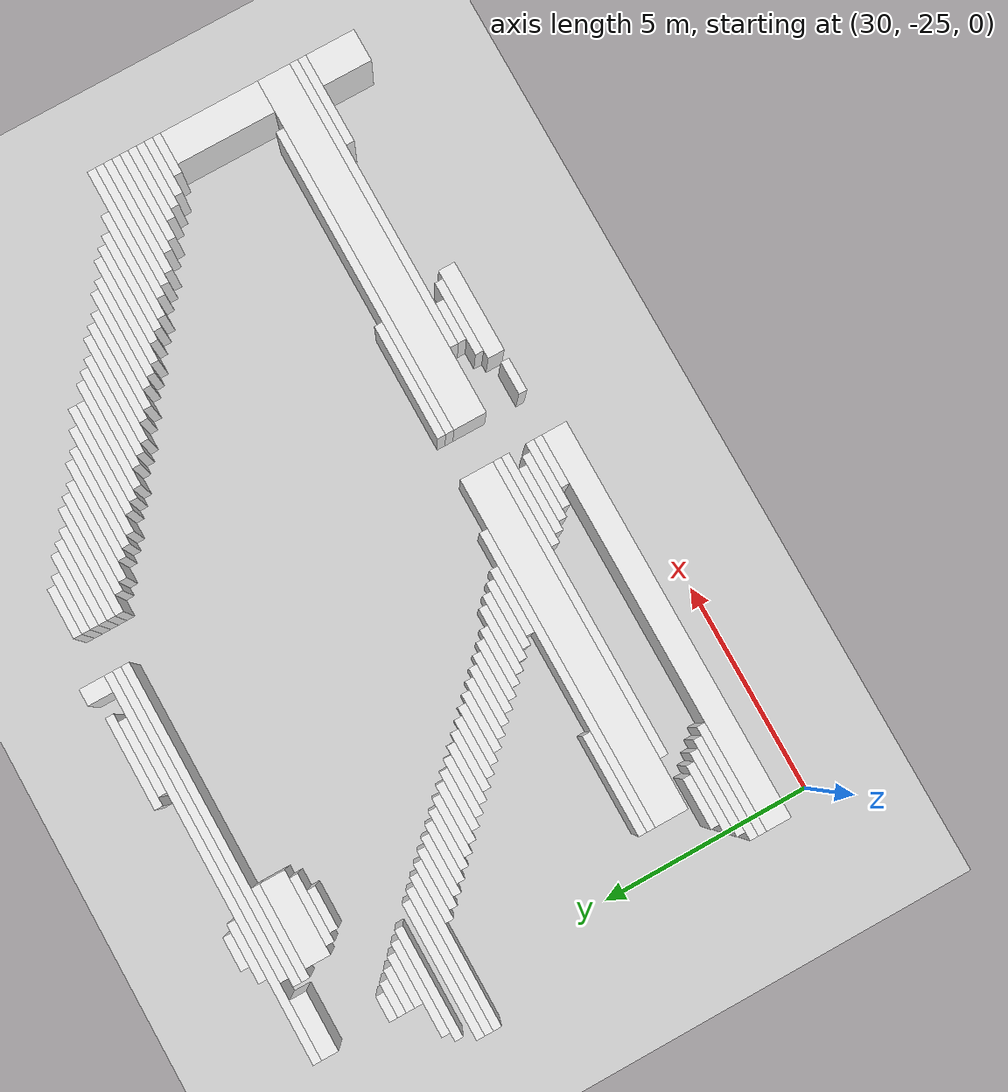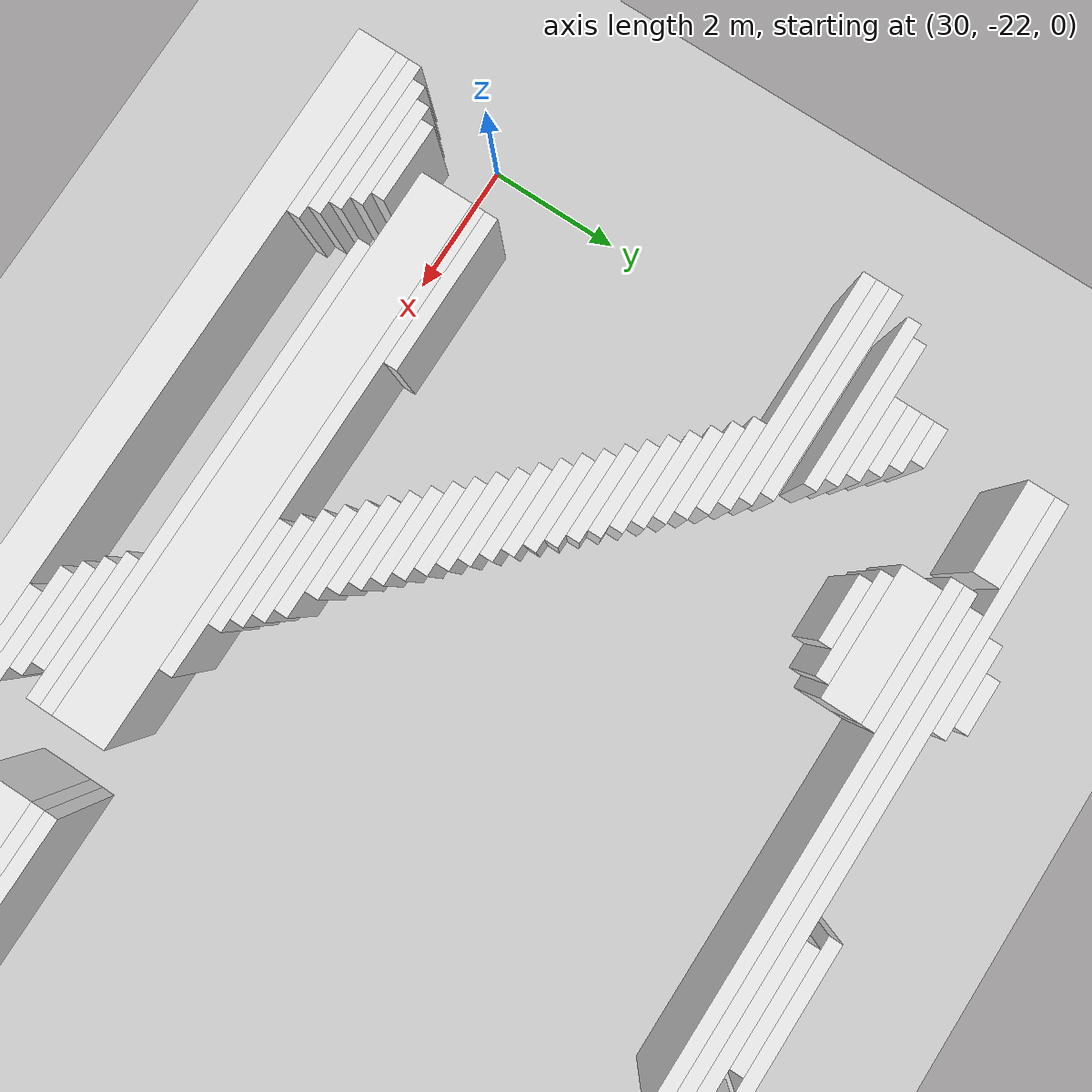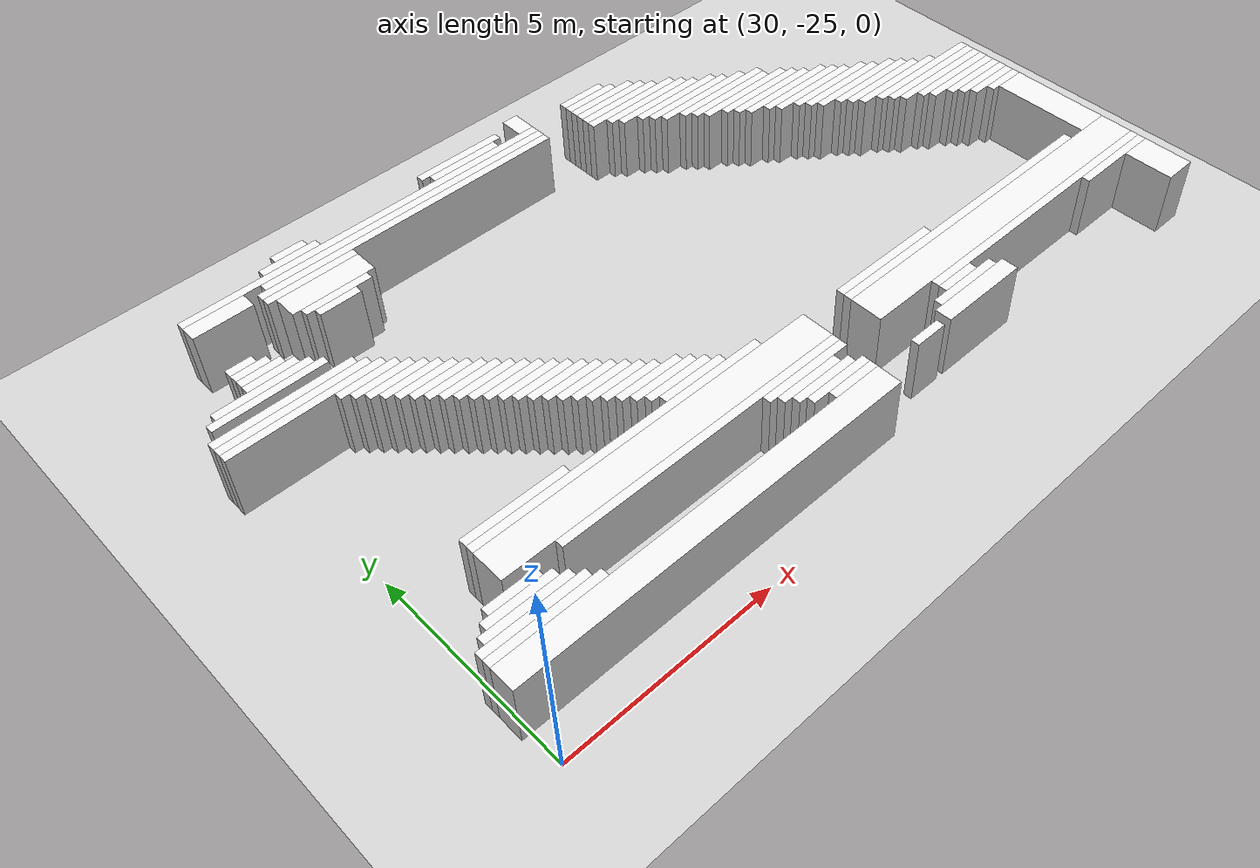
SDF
<sdf version="1.7">
 <world name="default">
  <model name="ground_plane">
   <static>1</static>
   <link name="link">
    <collision name="collision">
     <geometry><plane><normal>0 0 1</normal><size>120 120</size></plane></geometry>
    </collision>
    <visual name="visual">
     <geometry><plane><normal>0 0 1</normal><size>120 120</size></plane></geometry>
     <material>
      <script><uri>file://media/materials/scripts/gazebo.material</uri><name>Gazebo/Grey</name></script>
     </material>
    </visual>
   </link>
  </model>
  <model name="random_complex_02_model">
   <static>1</static>
   <link name="obs_2456">
    <pose>33.0000 -12.7000 0.8000 0 0 0</pose>
    <collision name="obs_2456_col"><geometry><box><size>0.8000 0.2000 1.6000</size></box></geometry></collision>
    <visual name="obs_2456_vis">
     <geometry><box><size>0.8000 0.2000 1.6000</size></box></geometry>
     <material>
      <script><uri>file://media/materials/scripts/gazebo.material</uri><name>Gazebo/White</name></script>
     </material>
    </visual>
   </link>
   <link name="obs_2457">
    <pose>37.5000 -12.7000 0.8000 0 0 0</pose>
    <collision name="obs_2457_col"><geometry><box><size>2.2000 0.2000 1.6000</size></box></geometry></collision>
    <visual name="obs_2457_vis">
     <geometry><box><size>2.2000 0.2000 1.6000</size></box></geometry>
     <material>
      <script><uri>file://media/materials/scripts/gazebo.material</uri><name>Gazebo/White</name></script>
     </material>
    </visual>
   </link>
   <link name="obs_2462">
    <pose>39.2000 -12.7000 0.8000 0 0 0</pose>
    <collision name="obs_2462_col"><geometry><box><size>0.4000 0.6000 1.6000</size></box></geometry></collision>
    <visual name="obs_2462_vis">
     <geometry><box><size>0.4000 0.6000 1.6000</size></box></geometry>
     <material>
      <script><uri>file://media/materials/scripts/gazebo.material</uri><name>Gazebo/White</name></script>
     </material>
    </visual>
   </link>
   <link name="obs_2464">
    <pose>32.9000 -12.9000 0.8000 0 0 0</pose>
    <collision name="obs_2464_col"><geometry><box><size>1.4000 0.2000 1.6000</size></box></geometry></collision>
    <visual name="obs_2464_vis">
     <geometry><box><size>1.4000 0.2000 1.6000</size></box></geometry>
     <material>
      <script><uri>file://media/materials/scripts/gazebo.material</uri><name>Gazebo/White</name></script>
     </material>
    </visual>
   </link>
   <link name="obs_2465">
    <pose>37.5000 -12.9000 0.8000 0 0 0</pose>
    <collision name="obs_2465_col"><geometry><box><size>1.8000 0.2000 1.6000</size></box></geometry></collision>
    <visual name="obs_2465_vis">
     <geometry><box><size>1.8000 0.2000 1.6000</size></box></geometry>
     <material>
      <script><uri>file://media/materials/scripts/gazebo.material</uri><name>Gazebo/White</name></script>
     </material>
    </visual>
   </link>
   <link name="obs_2466">
    <pose>41.0000 -12.9000 0.8000 0 0 0</pose>
    <collision name="obs_2466_col"><geometry><box><size>1.2000 0.2000 1.6000</size></box></geometry></collision>
    <visual name="obs_2466_vis">
     <geometry><box><size>1.2000 0.2000 1.6000</size></box></geometry>
     <material>
      <script><uri>file://media/materials/scripts/gazebo.material</uri><name>Gazebo/White</name></script>
     </material>
    </visual>
   </link>
   <link name="obs_2469">
    <pose>34.8000 -13.1000 0.8000 0 0 0</pose>
    <collision name="obs_2469_col"><geometry><box><size>9.2000 0.2000 1.6000</size></box></geometry></collision>
    <visual name="obs_2469_vis">
     <geometry><box><size>9.2000 0.2000 1.6000</size></box></geometry>
     <material>
      <script><uri>file://media/materials/scripts/gazebo.material</uri><name>Gazebo/White</name></script>
     </material>
    </visual>
   </link>
   <link name="obs_2470">
    <pose>41.1000 -13.1000 0.8000 0 0 0</pose>
    <collision name="obs_2470_col"><geometry><box><size>1.4000 0.2000 1.6000</size></box></geometry></collision>
    <visual name="obs_2470_vis">
     <geometry><box><size>1.4000 0.2000 1.6000</size></box></geometry>
     <material>
      <script><uri>file://media/materials/scripts/gazebo.material</uri><name>Gazebo/White</name></script>
     </material>
    </visual>
   </link>
   <link name="obs_2475">
    <pose>35.7000 -13.3000 0.8000 0 0 0</pose>
    <collision name="obs_2475_col"><geometry><box><size>7.4000 0.2000 1.6000</size></box></geometry></collision>
    <visual name="obs_2475_vis">
     <geometry><box><size>7.4000 0.2000 1.6000</size></box></geometry>
     <material>
      <script><uri>file://media/materials/scripts/gazebo.material</uri><name>Gazebo/White</name></script>
     </material>
    </visual>
   </link>
   <link name="obs_2476">
    <pose>41.3000 -13.3000 0.8000 0 0 0</pose>
    <collision name="obs_2476_col"><geometry><box><size>1.8000 0.2000 1.6000</size></box></geometry></collision>
    <visual name="obs_2476_vis">
     <geometry><box><size>1.8000 0.2000 1.6000</size></box></geometry>
     <material>
      <script><uri>file://media/materials/scripts/gazebo.material</uri><name>Gazebo/White</name></script>
     </material>
    </visual>
   </link>
   <link name="obs_2479">
    <pose>30.9000 -13.4000 0.8000 0 0 0</pose>
    <collision name="obs_2479_col"><geometry><box><size>1.4000 0.4000 1.6000</size></box></geometry></collision>
    <visual name="obs_2479_vis">
     <geometry><box><size>1.4000 0.4000 1.6000</size></box></geometry>
     <material>
      <script><uri>file://media/materials/scripts/gazebo.material</uri><name>Gazebo/White</name></script>
     </material>
    </visual>
   </link>
   <link name="obs_2483">
    <pose>35.6000 -13.5000 0.8000 0 0 0</pose>
    <collision name="obs_2483_col"><geometry><box><size>7.6000 0.2000 1.6000</size></box></geometry></collision>
    <visual name="obs_2483_vis">
     <geometry><box><size>7.6000 0.2000 1.6000</size></box></geometry>
     <material>
      <script><uri>file://media/materials/scripts/gazebo.material</uri><name>Gazebo/White</name></script>
     </material>
    </visual>
   </link>
   <link name="obs_2484">
    <pose>41.4000 -13.5000 0.8000 0 0 0</pose>
    <collision name="obs_2484_col"><geometry><box><size>2.0000 0.2000 1.6000</size></box></geometry></collision>
    <visual name="obs_2484_vis">
     <geometry><box><size>2.0000 0.2000 1.6000</size></box></geometry>
     <material>
      <script><uri>file://media/materials/scripts/gazebo.material</uri><name>Gazebo/White</name></script>
     </material>
    </visual>
   </link>
   <link name="obs_2490">
    <pose>32.9000 -13.7000 0.8000 0 0 0</pose>
    <collision name="obs_2490_col"><geometry><box><size>2.2000 0.2000 1.6000</size></box></geometry></collision>
    <visual name="obs_2490_vis">
     <geometry><box><size>2.2000 0.2000 1.6000</size></box></geometry>
     <material>
      <script><uri>file://media/materials/scripts/gazebo.material</uri><name>Gazebo/White</name></script>
     </material>
    </visual>
   </link>
   <link name="obs_2491">
    <pose>41.5000 -13.7000 0.8000 0 0 0</pose>
    <collision name="obs_2491_col"><geometry><box><size>2.2000 0.2000 1.6000</size></box></geometry></collision>
    <visual name="obs_2491_vis">
     <geometry><box><size>2.2000 0.2000 1.6000</size></box></geometry>
     <material>
      <script><uri>file://media/materials/scripts/gazebo.material</uri><name>Gazebo/White</name></script>
     </material>
    </visual>
   </link>
   <link name="obs_2500">
    <pose>41.7000 -13.9000 0.8000 0 0 0</pose>
    <collision name="obs_2500_col"><geometry><box><size>2.6000 0.2000 1.6000</size></box></geometry></collision>
    <visual name="obs_2500_vis">
     <geometry><box><size>2.6000 0.2000 1.6000</size></box></geometry>
     <material>
      <script><uri>file://media/materials/scripts/gazebo.material</uri><name>Gazebo/White</name></script>
     </material>
    </visual>
   </link>
   <link name="obs_2508">
    <pose>42.0000 -14.1000 0.8000 0 0 0</pose>
    <collision name="obs_2508_col"><geometry><box><size>2.4000 0.2000 1.6000</size></box></geometry></collision>
    <visual name="obs_2508_vis">
     <geometry><box><size>2.4000 0.2000 1.6000</size></box></geometry>
     <material>
      <script><uri>file://media/materials/scripts/gazebo.material</uri><name>Gazebo/White</name></script>
     </material>
    </visual>
   </link>
   <link name="obs_2510">
    <pose>33.0000 -14.1000 0.8000 0 0 0</pose>
    <collision name="obs_2510_col"><geometry><box><size>2.0000 0.6000 1.6000</size></box></geometry></collision>
    <visual name="obs_2510_vis">
     <geometry><box><size>2.0000 0.6000 1.6000</size></box></geometry>
     <material>
      <script><uri>file://media/materials/scripts/gazebo.material</uri><name>Gazebo/White</name></script>
     </material>
    </visual>
   </link>
   <link name="obs_2519">
    <pose>42.2000 -14.3000 0.8000 0 0 0</pose>
    <collision name="obs_2519_col"><geometry><box><size>2.4000 0.2000 1.6000</size></box></geometry></collision>
    <visual name="obs_2519_vis">
     <geometry><box><size>2.4000 0.2000 1.6000</size></box></geometry>
     <material>
      <script><uri>file://media/materials/scripts/gazebo.material</uri><name>Gazebo/White</name></script>
     </material>
    </visual>
   </link>
   <link name="obs_2529">
    <pose>33.0000 -14.5000 0.8000 0 0 0</pose>
    <collision name="obs_2529_col"><geometry><box><size>1.6000 0.2000 1.6000</size></box></geometry></collision>
    <visual name="obs_2529_vis">
     <geometry><box><size>1.6000 0.2000 1.6000</size></box></geometry>
     <material>
      <script><uri>file://media/materials/scripts/gazebo.material</uri><name>Gazebo/White</name></script>
     </material>
    </visual>
   </link>
   <link name="obs_2530">
    <pose>42.6000 -14.5000 0.8000 0 0 0</pose>
    <collision name="obs_2530_col"><geometry><box><size>2.4000 0.2000 1.6000</size></box></geometry></collision>
    <visual name="obs_2530_vis">
     <geometry><box><size>2.4000 0.2000 1.6000</size></box></geometry>
     <material>
      <script><uri>file://media/materials/scripts/gazebo.material</uri><name>Gazebo/White</name></script>
     </material>
    </visual>
   </link>
   <link name="obs_2538">
    <pose>32.9000 -14.7000 0.8000 0 0 0</pose>
    <collision name="obs_2538_col"><geometry><box><size>1.0000 0.2000 1.6000</size></box></geometry></collision>
    <visual name="obs_2538_vis">
     <geometry><box><size>1.0000 0.2000 1.6000</size></box></geometry>
     <material>
      <script><uri>file://media/materials/scripts/gazebo.material</uri><name>Gazebo/White</name></script>
     </material>
    </visual>
   </link>
   <link name="obs_2539">
    <pose>42.8000 -14.7000 0.8000 0 0 0</pose>
    <collision name="obs_2539_col"><geometry><box><size>2.4000 0.2000 1.6000</size></box></geometry></collision>
    <visual name="obs_2539_vis">
     <geometry><box><size>2.4000 0.2000 1.6000</size></box></geometry>
     <material>
      <script><uri>file://media/materials/scripts/gazebo.material</uri><name>Gazebo/White</name></script>
     </material>
    </visual>
   </link>
   <link name="obs_2548">
    <pose>30.5000 -14.9000 0.8000 0 0 0</pose>
    <collision name="obs_2548_col"><geometry><box><size>0.6000 0.2000 1.6000</size></box></geometry></collision>
    <visual name="obs_2548_vis">
     <geometry><box><size>0.6000 0.2000 1.6000</size></box></geometry>
     <material>
      <script><uri>file://media/materials/scripts/gazebo.material</uri><name>Gazebo/White</name></script>
     </material>
    </visual>
   </link>
   <link name="obs_2549">
    <pose>43.1000 -14.9000 0.8000 0 0 0</pose>
    <collision name="obs_2549_col"><geometry><box><size>2.6000 0.2000 1.6000</size></box></geometry></collision>
    <visual name="obs_2549_vis">
     <geometry><box><size>2.6000 0.2000 1.6000</size></box></geometry>
     <material>
      <script><uri>file://media/materials/scripts/gazebo.material</uri><name>Gazebo/White</name></script>
     </material>
    </visual>
   </link>
   <link name="obs_2558">
    <pose>30.6000 -15.1000 0.8000 0 0 0</pose>
    <collision name="obs_2558_col"><geometry><box><size>0.8000 0.2000 1.6000</size></box></geometry></collision>
    <visual name="obs_2558_vis">
     <geometry><box><size>0.8000 0.2000 1.6000</size></box></geometry>
     <material>
      <script><uri>file://media/materials/scripts/gazebo.material</uri><name>Gazebo/White</name></script>
     </material>
    </visual>
   </link>
   <link name="obs_2559">
    <pose>43.5000 -15.1000 0.8000 0 0 0</pose>
    <collision name="obs_2559_col"><geometry><box><size>2.6000 0.2000 1.6000</size></box></geometry></collision>
    <visual name="obs_2559_vis">
     <geometry><box><size>2.6000 0.2000 1.6000</size></box></geometry>
     <material>
      <script><uri>file://media/materials/scripts/gazebo.material</uri><name>Gazebo/White</name></script>
     </material>
    </visual>
   </link>
   <link name="obs_2568">
    <pose>30.7000 -15.3000 0.8000 0 0 0</pose>
    <collision name="obs_2568_col"><geometry><box><size>1.0000 0.2000 1.6000</size></box></geometry></collision>
    <visual name="obs_2568_vis">
     <geometry><box><size>1.0000 0.2000 1.6000</size></box></geometry>
     <material>
      <script><uri>file://media/materials/scripts/gazebo.material</uri><name>Gazebo/White</name></script>
     </material>
    </visual>
   </link>
   <link name="obs_2569">
    <pose>43.6000 -15.3000 0.8000 0 0 0</pose>
    <collision name="obs_2569_col"><geometry><box><size>2.4000 0.2000 1.6000</size></box></geometry></collision>
    <visual name="obs_2569_vis">
     <geometry><box><size>2.4000 0.2000 1.6000</size></box></geometry>
     <material>
      <script><uri>file://media/materials/scripts/gazebo.material</uri><name>Gazebo/White</name></script>
     </material>
    </visual>
   </link>
   <link name="obs_2580">
    <pose>30.8000 -15.5000 0.8000 0 0 0</pose>
    <collision name="obs_2580_col"><geometry><box><size>1.2000 0.2000 1.6000</size></box></geometry></collision>
    <visual name="obs_2580_vis">
     <geometry><box><size>1.2000 0.2000 1.6000</size></box></geometry>
     <material>
      <script><uri>file://media/materials/scripts/gazebo.material</uri><name>Gazebo/White</name></script>
     </material>
    </visual>
   </link>
   <link name="obs_2581">
    <pose>43.9000 -15.5000 0.8000 0 0 0</pose>
    <collision name="obs_2581_col"><geometry><box><size>2.6000 0.2000 1.6000</size></box></geometry></collision>
    <visual name="obs_2581_vis">
     <geometry><box><size>2.6000 0.2000 1.6000</size></box></geometry>
     <material>
      <script><uri>file://media/materials/scripts/gazebo.material</uri><name>Gazebo/White</name></script>
     </material>
    </visual>
   </link>
   <link name="obs_2592">
    <pose>30.5000 -15.7000 0.8000 0 0 0</pose>
    <collision name="obs_2592_col"><geometry><box><size>2.2000 0.2000 1.6000</size></box></geometry></collision>
    <visual name="obs_2592_vis">
     <geometry><box><size>2.2000 0.2000 1.6000</size></box></geometry>
     <material>
      <script><uri>file://media/materials/scripts/gazebo.material</uri><name>Gazebo/White</name></script>
     </material>
    </visual>
   </link>
   <link name="obs_2593">
    <pose>44.2000 -15.7000 0.8000 0 0 0</pose>
    <collision name="obs_2593_col"><geometry><box><size>2.4000 0.2000 1.6000</size></box></geometry></collision>
    <visual name="obs_2593_vis">
     <geometry><box><size>2.4000 0.2000 1.6000</size></box></geometry>
     <material>
      <script><uri>file://media/materials/scripts/gazebo.material</uri><name>Gazebo/White</name></script>
     </material>
    </visual>
   </link>
   <link name="obs_2605">
    <pose>30.5000 -15.9000 0.8000 0 0 0</pose>
    <collision name="obs_2605_col"><geometry><box><size>2.6000 0.2000 1.6000</size></box></geometry></collision>
    <visual name="obs_2605_vis">
     <geometry><box><size>2.6000 0.2000 1.6000</size></box></geometry>
     <material>
      <script><uri>file://media/materials/scripts/gazebo.material</uri><name>Gazebo/White</name></script>
     </material>
    </visual>
   </link>
   <link name="obs_2606">
    <pose>44.4000 -15.9000 0.8000 0 0 0</pose>
    <collision name="obs_2606_col"><geometry><box><size>2.4000 0.2000 1.6000</size></box></geometry></collision>
    <visual name="obs_2606_vis">
     <geometry><box><size>2.4000 0.2000 1.6000</size></box></geometry>
     <material>
      <script><uri>file://media/materials/scripts/gazebo.material</uri><name>Gazebo/White</name></script>
     </material>
    </visual>
   </link>
   <link name="obs_2613">
    <pose>44.7000 -16.1000 0.8000 0 0 0</pose>
    <collision name="obs_2613_col"><geometry><box><size>2.6000 0.2000 1.6000</size></box></geometry></collision>
    <visual name="obs_2613_vis">
     <geometry><box><size>2.6000 0.2000 1.6000</size></box></geometry>
     <material>
      <script><uri>file://media/materials/scripts/gazebo.material</uri><name>Gazebo/White</name></script>
     </material>
    </visual>
   </link>
   <link name="obs_2618">
    <pose>30.6000 -16.3000 0.8000 0 0 0</pose>
    <collision name="obs_2618_col"><geometry><box><size>3.2000 0.2000 1.6000</size></box></geometry></collision>
    <visual name="obs_2618_vis">
     <geometry><box><size>3.2000 0.2000 1.6000</size></box></geometry>
     <material>
      <script><uri>file://media/materials/scripts/gazebo.material</uri><name>Gazebo/White</name></script>
     </material>
    </visual>
   </link>
   <link name="obs_2619">
    <pose>45.0000 -16.3000 0.8000 0 0 0</pose>
    <collision name="obs_2619_col"><geometry><box><size>2.4000 0.2000 1.6000</size></box></geometry></collision>
    <visual name="obs_2619_vis">
     <geometry><box><size>2.4000 0.2000 1.6000</size></box></geometry>
     <material>
      <script><uri>file://media/materials/scripts/gazebo.material</uri><name>Gazebo/White</name></script>
     </material>
    </visual>
   </link>
   <link name="obs_2625">
    <pose>30.7000 -16.5000 0.8000 0 0 0</pose>
    <collision name="obs_2625_col"><geometry><box><size>3.4000 0.2000 1.6000</size></box></geometry></collision>
    <visual name="obs_2625_vis">
     <geometry><box><size>3.4000 0.2000 1.6000</size></box></geometry>
     <material>
      <script><uri>file://media/materials/scripts/gazebo.material</uri><name>Gazebo/White</name></script>
     </material>
    </visual>
   </link>
   <link name="obs_2626">
    <pose>45.2000 -16.5000 0.8000 0 0 0</pose>
    <collision name="obs_2626_col"><geometry><box><size>2.4000 0.2000 1.6000</size></box></geometry></collision>
    <visual name="obs_2626_vis">
     <geometry><box><size>2.4000 0.2000 1.6000</size></box></geometry>
     <material>
      <script><uri>file://media/materials/scripts/gazebo.material</uri><name>Gazebo/White</name></script>
     </material>
    </visual>
   </link>
   <link name="obs_2633">
    <pose>30.8000 -16.7000 0.8000 0 0 0</pose>
    <collision name="obs_2633_col"><geometry><box><size>3.6000 0.2000 1.6000</size></box></geometry></collision>
    <visual name="obs_2633_vis">
     <geometry><box><size>3.6000 0.2000 1.6000</size></box></geometry>
     <material>
      <script><uri>file://media/materials/scripts/gazebo.material</uri><name>Gazebo/White</name></script>
     </material>
    </visual>
   </link>
   <link name="obs_2634">
    <pose>45.6000 -16.7000 0.8000 0 0 0</pose>
    <collision name="obs_2634_col"><geometry><box><size>2.4000 0.2000 1.6000</size></box></geometry></collision>
    <visual name="obs_2634_vis">
     <geometry><box><size>2.4000 0.2000 1.6000</size></box></geometry>
     <material>
      <script><uri>file://media/materials/scripts/gazebo.material</uri><name>Gazebo/White</name></script>
     </material>
    </visual>
   </link>
   <link name="obs_2639">
    <pose>32.1000 -16.9000 0.8000 0 0 0</pose>
    <collision name="obs_2639_col"><geometry><box><size>1.4000 0.2000 1.6000</size></box></geometry></collision>
    <visual name="obs_2639_vis">
     <geometry><box><size>1.4000 0.2000 1.6000</size></box></geometry>
     <material>
      <script><uri>file://media/materials/scripts/gazebo.material</uri><name>Gazebo/White</name></script>
     </material>
    </visual>
   </link>
   <link name="obs_2640">
    <pose>45.8000 -16.9000 0.8000 0 0 0</pose>
    <collision name="obs_2640_col"><geometry><box><size>2.4000 0.2000 1.6000</size></box></geometry></collision>
    <visual name="obs_2640_vis">
     <geometry><box><size>2.4000 0.2000 1.6000</size></box></geometry>
     <material>
      <script><uri>file://media/materials/scripts/gazebo.material</uri><name>Gazebo/White</name></script>
     </material>
    </visual>
   </link>
   <link name="obs_2646">
    <pose>32.3000 -17.1000 0.8000 0 0 0</pose>
    <collision name="obs_2646_col"><geometry><box><size>1.4000 0.2000 1.6000</size></box></geometry></collision>
    <visual name="obs_2646_vis">
     <geometry><box><size>1.4000 0.2000 1.6000</size></box></geometry>
     <material>
      <script><uri>file://media/materials/scripts/gazebo.material</uri><name>Gazebo/White</name></script>
     </material>
    </visual>
   </link>
   <link name="obs_2647">
    <pose>46.1000 -17.1000 0.8000 0 0 0</pose>
    <collision name="obs_2647_col"><geometry><box><size>2.6000 0.2000 1.6000</size></box></geometry></collision>
    <visual name="obs_2647_vis">
     <geometry><box><size>2.6000 0.2000 1.6000</size></box></geometry>
     <material>
      <script><uri>file://media/materials/scripts/gazebo.material</uri><name>Gazebo/White</name></script>
     </material>
    </visual>
   </link>
   <link name="obs_2653">
    <pose>32.5000 -17.3000 0.8000 0 0 0</pose>
    <collision name="obs_2653_col"><geometry><box><size>1.4000 0.2000 1.6000</size></box></geometry></collision>
    <visual name="obs_2653_vis">
     <geometry><box><size>1.4000 0.2000 1.6000</size></box></geometry>
     <material>
      <script><uri>file://media/materials/scripts/gazebo.material</uri><name>Gazebo/White</name></script>
     </material>
    </visual>
   </link>
   <link name="obs_2654">
    <pose>46.4000 -17.3000 0.8000 0 0 0</pose>
    <collision name="obs_2654_col"><geometry><box><size>2.4000 0.2000 1.6000</size></box></geometry></collision>
    <visual name="obs_2654_vis">
     <geometry><box><size>2.4000 0.2000 1.6000</size></box></geometry>
     <material>
      <script><uri>file://media/materials/scripts/gazebo.material</uri><name>Gazebo/White</name></script>
     </material>
    </visual>
   </link>
   <link name="obs_2660">
    <pose>32.7000 -17.5000 0.8000 0 0 0</pose>
    <collision name="obs_2660_col"><geometry><box><size>1.4000 0.2000 1.6000</size></box></geometry></collision>
    <visual name="obs_2660_vis">
     <geometry><box><size>1.4000 0.2000 1.6000</size></box></geometry>
     <material>
      <script><uri>file://media/materials/scripts/gazebo.material</uri><name>Gazebo/White</name></script>
     </material>
    </visual>
   </link>
   <link name="obs_2661">
    <pose>46.6000 -17.5000 0.8000 0 0 0</pose>
    <collision name="obs_2661_col"><geometry><box><size>2.4000 0.2000 1.6000</size></box></geometry></collision>
    <visual name="obs_2661_vis">
     <geometry><box><size>2.4000 0.2000 1.6000</size></box></geometry>
     <material>
      <script><uri>file://media/materials/scripts/gazebo.material</uri><name>Gazebo/White</name></script>
     </material>
    </visual>
   </link>
   <link name="obs_2673">
    <pose>32.9000 -17.7000 0.8000 0 0 0</pose>
    <collision name="obs_2673_col"><geometry><box><size>1.4000 0.2000 1.6000</size></box></geometry></collision>
    <visual name="obs_2673_vis">
     <geometry><box><size>1.4000 0.2000 1.6000</size></box></geometry>
     <material>
      <script><uri>file://media/materials/scripts/gazebo.material</uri><name>Gazebo/White</name></script>
     </material>
    </visual>
   </link>
   <link name="obs_2674">
    <pose>46.9000 -17.7000 0.8000 0 0 0</pose>
    <collision name="obs_2674_col"><geometry><box><size>2.6000 0.2000 1.6000</size></box></geometry></collision>
    <visual name="obs_2674_vis">
     <geometry><box><size>2.6000 0.2000 1.6000</size></box></geometry>
     <material>
      <script><uri>file://media/materials/scripts/gazebo.material</uri><name>Gazebo/White</name></script>
     </material>
    </visual>
   </link>
   <link name="obs_2681">
    <pose>33.1000 -17.9000 0.8000 0 0 0</pose>
    <collision name="obs_2681_col"><geometry><box><size>1.4000 0.2000 1.6000</size></box></geometry></collision>
    <visual name="obs_2681_vis">
     <geometry><box><size>1.4000 0.2000 1.6000</size></box></geometry>
     <material>
      <script><uri>file://media/materials/scripts/gazebo.material</uri><name>Gazebo/White</name></script>
     </material>
    </visual>
   </link>
   <link name="obs_2682">
    <pose>47.6000 -17.9000 0.8000 0 0 0</pose>
    <collision name="obs_2682_col"><geometry><box><size>3.2000 0.2000 1.6000</size></box></geometry></collision>
    <visual name="obs_2682_vis">
     <geometry><box><size>3.2000 0.2000 1.6000</size></box></geometry>
     <material>
      <script><uri>file://media/materials/scripts/gazebo.material</uri><name>Gazebo/White</name></script>
     </material>
    </visual>
   </link>
   <link name="obs_2690">
    <pose>33.3000 -18.1000 0.8000 0 0 0</pose>
    <collision name="obs_2690_col"><geometry><box><size>1.4000 0.2000 1.6000</size></box></geometry></collision>
    <visual name="obs_2690_vis">
     <geometry><box><size>1.4000 0.2000 1.6000</size></box></geometry>
     <material>
      <script><uri>file://media/materials/scripts/gazebo.material</uri><name>Gazebo/White</name></script>
     </material>
    </visual>
   </link>
   <link name="obs_2691">
    <pose>47.7000 -18.1000 0.8000 0 0 0</pose>
    <collision name="obs_2691_col"><geometry><box><size>3.0000 0.2000 1.6000</size></box></geometry></collision>
    <visual name="obs_2691_vis">
     <geometry><box><size>3.0000 0.2000 1.6000</size></box></geometry>
     <material>
      <script><uri>file://media/materials/scripts/gazebo.material</uri><name>Gazebo/White</name></script>
     </material>
    </visual>
   </link>
   <link name="obs_2700">
    <pose>33.5000 -18.3000 0.8000 0 0 0</pose>
    <collision name="obs_2700_col"><geometry><box><size>1.4000 0.2000 1.6000</size></box></geometry></collision>
    <visual name="obs_2700_vis">
     <geometry><box><size>1.4000 0.2000 1.6000</size></box></geometry>
     <material>
      <script><uri>file://media/materials/scripts/gazebo.material</uri><name>Gazebo/White</name></script>
     </material>
    </visual>
   </link>
   <link name="obs_2701">
    <pose>47.8000 -18.3000 0.8000 0 0 0</pose>
    <collision name="obs_2701_col"><geometry><box><size>2.8000 0.2000 1.6000</size></box></geometry></collision>
    <visual name="obs_2701_vis">
     <geometry><box><size>2.8000 0.2000 1.6000</size></box></geometry>
     <material>
      <script><uri>file://media/materials/scripts/gazebo.material</uri><name>Gazebo/White</name></script>
     </material>
    </visual>
   </link>
   <link name="obs_2707">
    <pose>33.7000 -18.5000 0.8000 0 0 0</pose>
    <collision name="obs_2707_col"><geometry><box><size>1.4000 0.2000 1.6000</size></box></geometry></collision>
    <visual name="obs_2707_vis">
     <geometry><box><size>1.4000 0.2000 1.6000</size></box></geometry>
     <material>
      <script><uri>file://media/materials/scripts/gazebo.material</uri><name>Gazebo/White</name></script>
     </material>
    </visual>
   </link>
   <link name="obs_2708">
    <pose>48.0000 -18.5000 0.8000 0 0 0</pose>
    <collision name="obs_2708_col"><geometry><box><size>2.4000 0.2000 1.6000</size></box></geometry></collision>
    <visual name="obs_2708_vis">
     <geometry><box><size>2.4000 0.2000 1.6000</size></box></geometry>
     <material>
      <script><uri>file://media/materials/scripts/gazebo.material</uri><name>Gazebo/White</name></script>
     </material>
    </visual>
   </link>
   <link name="obs_2715">
    <pose>33.9000 -18.7000 0.8000 0 0 0</pose>
    <collision name="obs_2715_col"><geometry><box><size>1.4000 0.2000 1.6000</size></box></geometry></collision>
    <visual name="obs_2715_vis">
     <geometry><box><size>1.4000 0.2000 1.6000</size></box></geometry>
     <material>
      <script><uri>file://media/materials/scripts/gazebo.material</uri><name>Gazebo/White</name></script>
     </material>
    </visual>
   </link>
   <link name="obs_2716">
    <pose>48.1000 -18.7000 0.8000 0 0 0</pose>
    <collision name="obs_2716_col"><geometry><box><size>2.2000 0.2000 1.6000</size></box></geometry></collision>
    <visual name="obs_2716_vis">
     <geometry><box><size>2.2000 0.2000 1.6000</size></box></geometry>
     <material>
      <script><uri>file://media/materials/scripts/gazebo.material</uri><name>Gazebo/White</name></script>
     </material>
    </visual>
   </link>
   <link name="obs_2726">
    <pose>34.1000 -18.9000 0.8000 0 0 0</pose>
    <collision name="obs_2726_col"><geometry><box><size>1.4000 0.2000 1.6000</size></box></geometry></collision>
    <visual name="obs_2726_vis">
     <geometry><box><size>1.4000 0.2000 1.6000</size></box></geometry>
     <material>
      <script><uri>file://media/materials/scripts/gazebo.material</uri><name>Gazebo/White</name></script>
     </material>
    </visual>
   </link>
   <link name="obs_2727">
    <pose>48.3000 -18.9000 0.8000 0 0 0</pose>
    <collision name="obs_2727_col"><geometry><box><size>1.8000 0.2000 1.6000</size></box></geometry></collision>
    <visual name="obs_2727_vis">
     <geometry><box><size>1.8000 0.2000 1.6000</size></box></geometry>
     <material>
      <script><uri>file://media/materials/scripts/gazebo.material</uri><name>Gazebo/White</name></script>
     </material>
    </visual>
   </link>
   <link name="obs_2736">
    <pose>34.3000 -19.1000 0.8000 0 0 0</pose>
    <collision name="obs_2736_col"><geometry><box><size>1.4000 0.2000 1.6000</size></box></geometry></collision>
    <visual name="obs_2736_vis">
     <geometry><box><size>1.4000 0.2000 1.6000</size></box></geometry>
     <material>
      <script><uri>file://media/materials/scripts/gazebo.material</uri><name>Gazebo/White</name></script>
     </material>
    </visual>
   </link>
   <link name="obs_2737">
    <pose>48.4000 -19.1000 0.8000 0 0 0</pose>
    <collision name="obs_2737_col"><geometry><box><size>1.6000 0.2000 1.6000</size></box></geometry></collision>
    <visual name="obs_2737_vis">
     <geometry><box><size>1.6000 0.2000 1.6000</size></box></geometry>
     <material>
      <script><uri>file://media/materials/scripts/gazebo.material</uri><name>Gazebo/White</name></script>
     </material>
    </visual>
   </link>
   <link name="obs_2747">
    <pose>34.5000 -19.3000 0.8000 0 0 0</pose>
    <collision name="obs_2747_col"><geometry><box><size>1.4000 0.2000 1.6000</size></box></geometry></collision>
    <visual name="obs_2747_vis">
     <geometry><box><size>1.4000 0.2000 1.6000</size></box></geometry>
     <material>
      <script><uri>file://media/materials/scripts/gazebo.material</uri><name>Gazebo/White</name></script>
     </material>
    </visual>
   </link>
   <link name="obs_2748">
    <pose>48.5000 -19.3000 0.8000 0 0 0</pose>
    <collision name="obs_2748_col"><geometry><box><size>1.4000 0.2000 1.6000</size></box></geometry></collision>
    <visual name="obs_2748_vis">
     <geometry><box><size>1.4000 0.2000 1.6000</size></box></geometry>
     <material>
      <script><uri>file://media/materials/scripts/gazebo.material</uri><name>Gazebo/White</name></script>
     </material>
    </visual>
   </link>
   <link name="obs_2758">
    <pose>34.7000 -19.5000 0.8000 0 0 0</pose>
    <collision name="obs_2758_col"><geometry><box><size>1.4000 0.2000 1.6000</size></box></geometry></collision>
    <visual name="obs_2758_vis">
     <geometry><box><size>1.4000 0.2000 1.6000</size></box></geometry>
     <material>
      <script><uri>file://media/materials/scripts/gazebo.material</uri><name>Gazebo/White</name></script>
     </material>
    </visual>
   </link>
   <link name="obs_2759">
    <pose>48.7000 -19.5000 0.8000 0 0 0</pose>
    <collision name="obs_2759_col"><geometry><box><size>1.0000 0.2000 1.6000</size></box></geometry></collision>
    <visual name="obs_2759_vis">
     <geometry><box><size>1.0000 0.2000 1.6000</size></box></geometry>
     <material>
      <script><uri>file://media/materials/scripts/gazebo.material</uri><name>Gazebo/White</name></script>
     </material>
    </visual>
   </link>
   <link name="obs_2769">
    <pose>34.9000 -19.7000 0.8000 0 0 0</pose>
    <collision name="obs_2769_col"><geometry><box><size>1.4000 0.2000 1.6000</size></box></geometry></collision>
    <visual name="obs_2769_vis">
     <geometry><box><size>1.4000 0.2000 1.6000</size></box></geometry>
     <material>
      <script><uri>file://media/materials/scripts/gazebo.material</uri><name>Gazebo/White</name></script>
     </material>
    </visual>
   </link>
   <link name="obs_2776">
    <pose>35.1000 -19.9000 0.8000 0 0 0</pose>
    <collision name="obs_2776_col"><geometry><box><size>1.4000 0.2000 1.6000</size></box></geometry></collision>
    <visual name="obs_2776_vis">
     <geometry><box><size>1.4000 0.2000 1.6000</size></box></geometry>
     <material>
      <script><uri>file://media/materials/scripts/gazebo.material</uri><name>Gazebo/White</name></script>
     </material>
    </visual>
   </link>
   <link name="obs_2781">
    <pose>35.3000 -20.1000 0.8000 0 0 0</pose>
    <collision name="obs_2781_col"><geometry><box><size>1.4000 0.2000 1.6000</size></box></geometry></collision>
    <visual name="obs_2781_vis">
     <geometry><box><size>1.4000 0.2000 1.6000</size></box></geometry>
     <material>
      <script><uri>file://media/materials/scripts/gazebo.material</uri><name>Gazebo/White</name></script>
     </material>
    </visual>
   </link>
   <link name="obs_2786">
    <pose>35.5000 -20.3000 0.8000 0 0 0</pose>
    <collision name="obs_2786_col"><geometry><box><size>1.4000 0.2000 1.6000</size></box></geometry></collision>
    <visual name="obs_2786_vis">
     <geometry><box><size>1.4000 0.2000 1.6000</size></box></geometry>
     <material>
      <script><uri>file://media/materials/scripts/gazebo.material</uri><name>Gazebo/White</name></script>
     </material>
    </visual>
   </link>
   <link name="obs_2793">
    <pose>35.7000 -20.5000 0.8000 0 0 0</pose>
    <collision name="obs_2793_col"><geometry><box><size>1.4000 0.2000 1.6000</size></box></geometry></collision>
    <visual name="obs_2793_vis">
     <geometry><box><size>1.4000 0.2000 1.6000</size></box></geometry>
     <material>
      <script><uri>file://media/materials/scripts/gazebo.material</uri><name>Gazebo/White</name></script>
     </material>
    </visual>
   </link>
   <link name="obs_2799">
    <pose>36.0000 -20.7000 0.8000 0 0 0</pose>
    <collision name="obs_2799_col"><geometry><box><size>1.6000 0.2000 1.6000</size></box></geometry></collision>
    <visual name="obs_2799_vis">
     <geometry><box><size>1.6000 0.2000 1.6000</size></box></geometry>
     <material>
      <script><uri>file://media/materials/scripts/gazebo.material</uri><name>Gazebo/White</name></script>
     </material>
    </visual>
   </link>
   <link name="obs_2806">
    <pose>36.2000 -20.9000 0.8000 0 0 0</pose>
    <collision name="obs_2806_col"><geometry><box><size>1.6000 0.2000 1.6000</size></box></geometry></collision>
    <visual name="obs_2806_vis">
     <geometry><box><size>1.6000 0.2000 1.6000</size></box></geometry>
     <material>
      <script><uri>file://media/materials/scripts/gazebo.material</uri><name>Gazebo/White</name></script>
     </material>
    </visual>
   </link>
   <link name="obs_2812">
    <pose>36.4000 -21.1000 0.8000 0 0 0</pose>
    <collision name="obs_2812_col"><geometry><box><size>1.6000 0.2000 1.6000</size></box></geometry></collision>
    <visual name="obs_2812_vis">
     <geometry><box><size>1.6000 0.2000 1.6000</size></box></geometry>
     <material>
      <script><uri>file://media/materials/scripts/gazebo.material</uri><name>Gazebo/White</name></script>
     </material>
    </visual>
   </link>
   <link name="obs_2818">
    <pose>32.2000 -21.3000 0.8000 0 0 0</pose>
    <collision name="obs_2818_col"><geometry><box><size>2.4000 0.2000 1.6000</size></box></geometry></collision>
    <visual name="obs_2818_vis">
     <geometry><box><size>2.4000 0.2000 1.6000</size></box></geometry>
     <material>
      <script><uri>file://media/materials/scripts/gazebo.material</uri><name>Gazebo/White</name></script>
     </material>
    </visual>
   </link>
   <link name="obs_2819">
    <pose>36.6000 -21.3000 0.8000 0 0 0</pose>
    <collision name="obs_2819_col"><geometry><box><size>1.6000 0.2000 1.6000</size></box></geometry></collision>
    <visual name="obs_2819_vis">
     <geometry><box><size>1.6000 0.2000 1.6000</size></box></geometry>
     <material>
      <script><uri>file://media/materials/scripts/gazebo.material</uri><name>Gazebo/White</name></script>
     </material>
    </visual>
   </link>
   <link name="obs_2826">
    <pose>34.6000 -21.5000 0.8000 0 0 0</pose>
    <collision name="obs_2826_col"><geometry><box><size>7.2000 0.2000 1.6000</size></box></geometry></collision>
    <visual name="obs_2826_vis">
     <geometry><box><size>7.2000 0.2000 1.6000</size></box></geometry>
     <material>
      <script><uri>file://media/materials/scripts/gazebo.material</uri><name>Gazebo/White</name></script>
     </material>
    </visual>
   </link>
   <link name="obs_2833">
    <pose>41.8000 -21.7000 0.8000 0 0 0</pose>
    <collision name="obs_2833_col"><geometry><box><size>2.8000 0.2000 1.6000</size></box></geometry></collision>
    <visual name="obs_2833_vis">
     <geometry><box><size>2.8000 0.2000 1.6000</size></box></geometry>
     <material>
      <script><uri>file://media/materials/scripts/gazebo.material</uri><name>Gazebo/White</name></script>
     </material>
    </visual>
   </link>
   <link name="obs_2835">
    <pose>48.8000 -20.8000 0.8000 0 0 0</pose>
    <collision name="obs_2835_col"><geometry><box><size>0.8000 2.4000 1.6000</size></box></geometry></collision>
    <visual name="obs_2835_vis">
     <geometry><box><size>0.8000 2.4000 1.6000</size></box></geometry>
     <material>
      <script><uri>file://media/materials/scripts/gazebo.material</uri><name>Gazebo/White</name></script>
     </material>
    </visual>
   </link>
   <link name="obs_2840">
    <pose>44.2000 -21.9000 0.8000 0 0 0</pose>
    <collision name="obs_2840_col"><geometry><box><size>7.6000 0.2000 1.6000</size></box></geometry></collision>
    <visual name="obs_2840_vis">
     <geometry><box><size>7.6000 0.2000 1.6000</size></box></geometry>
     <material>
      <script><uri>file://media/materials/scripts/gazebo.material</uri><name>Gazebo/White</name></script>
     </material>
    </visual>
   </link>
   <link name="obs_2846">
    <pose>35.2000 -22.0000 0.8000 0 0 0</pose>
    <collision name="obs_2846_col"><geometry><box><size>8.4000 0.8000 1.6000</size></box></geometry></collision>
    <visual name="obs_2846_vis">
     <geometry><box><size>8.4000 0.8000 1.6000</size></box></geometry>
     <material>
      <script><uri>file://media/materials/scripts/gazebo.material</uri><name>Gazebo/White</name></script>
     </material>
    </visual>
   </link>
   <link name="obs_2855">
    <pose>35.8000 -22.5000 0.8000 0 0 0</pose>
    <collision name="obs_2855_col"><geometry><box><size>7.2000 0.2000 1.6000</size></box></geometry></collision>
    <visual name="obs_2855_vis">
     <geometry><box><size>7.2000 0.2000 1.6000</size></box></geometry>
     <material>
      <script><uri>file://media/materials/scripts/gazebo.material</uri><name>Gazebo/White</name></script>
     </material>
    </visual>
   </link>
   <link name="obs_2856">
    <pose>44.8000 -22.4000 0.8000 0 0 0</pose>
    <collision name="obs_2856_col"><geometry><box><size>8.8000 0.8000 1.6000</size></box></geometry></collision>
    <visual name="obs_2856_vis">
     <geometry><box><size>8.8000 0.8000 1.6000</size></box></geometry>
     <material>
      <script><uri>file://media/materials/scripts/gazebo.material</uri><name>Gazebo/White</name></script>
     </material>
    </visual>
   </link>
   <link name="obs_2863">
    <pose>31.0000 -22.7000 0.8000 0 0 0</pose>
    <collision name="obs_2863_col"><geometry><box><size>1.2000 0.2000 1.6000</size></box></geometry></collision>
    <visual name="obs_2863_vis">
     <geometry><box><size>1.2000 0.2000 1.6000</size></box></geometry>
     <material>
      <script><uri>file://media/materials/scripts/gazebo.material</uri><name>Gazebo/White</name></script>
     </material>
    </visual>
   </link>
   <link name="obs_2864">
    <pose>38.3000 -22.7000 0.8000 0 0 0</pose>
    <collision name="obs_2864_col"><geometry><box><size>2.2000 0.2000 1.6000</size></box></geometry></collision>
    <visual name="obs_2864_vis">
     <geometry><box><size>2.2000 0.2000 1.6000</size></box></geometry>
     <material>
      <script><uri>file://media/materials/scripts/gazebo.material</uri><name>Gazebo/White</name></script>
     </material>
    </visual>
   </link>
   <link name="obs_2871">
    <pose>31.0000 -22.9000 0.8000 0 0 0</pose>
    <collision name="obs_2871_col"><geometry><box><size>1.6000 0.2000 1.6000</size></box></geometry></collision>
    <visual name="obs_2871_vis">
     <geometry><box><size>1.6000 0.2000 1.6000</size></box></geometry>
     <material>
      <script><uri>file://media/materials/scripts/gazebo.material</uri><name>Gazebo/White</name></script>
     </material>
    </visual>
   </link>
   <link name="obs_2872">
    <pose>38.2000 -22.9000 0.8000 0 0 0</pose>
    <collision name="obs_2872_col"><geometry><box><size>1.6000 0.2000 1.6000</size></box></geometry></collision>
    <visual name="obs_2872_vis">
     <geometry><box><size>1.6000 0.2000 1.6000</size></box></geometry>
     <material>
      <script><uri>file://media/materials/scripts/gazebo.material</uri><name>Gazebo/White</name></script>
     </material>
    </visual>
   </link>
   <link name="obs_2873">
    <pose>45.6000 -22.9000 0.8000 0 0 0</pose>
    <collision name="obs_2873_col"><geometry><box><size>7.2000 0.2000 1.6000</size></box></geometry></collision>
    <visual name="obs_2873_vis">
     <geometry><box><size>7.2000 0.2000 1.6000</size></box></geometry>
     <material>
      <script><uri>file://media/materials/scripts/gazebo.material</uri><name>Gazebo/White</name></script>
     </material>
    </visual>
   </link>
   <link name="obs_2881">
    <pose>31.0000 -23.1000 0.8000 0 0 0</pose>
    <collision name="obs_2881_col"><geometry><box><size>2.0000 0.2000 1.6000</size></box></geometry></collision>
    <visual name="obs_2881_vis">
     <geometry><box><size>2.0000 0.2000 1.6000</size></box></geometry>
     <material>
      <script><uri>file://media/materials/scripts/gazebo.material</uri><name>Gazebo/White</name></script>
     </material>
    </visual>
   </link>
   <link name="obs_2882">
    <pose>38.4000 -23.1000 0.8000 0 0 0</pose>
    <collision name="obs_2882_col"><geometry><box><size>1.6000 0.2000 1.6000</size></box></geometry></collision>
    <visual name="obs_2882_vis">
     <geometry><box><size>1.6000 0.2000 1.6000</size></box></geometry>
     <material>
      <script><uri>file://media/materials/scripts/gazebo.material</uri><name>Gazebo/White</name></script>
     </material>
    </visual>
   </link>
   <link name="obs_2883">
    <pose>42.5000 -23.1000 0.8000 0 0 0</pose>
    <collision name="obs_2883_col"><geometry><box><size>1.0000 0.2000 1.6000</size></box></geometry></collision>
    <visual name="obs_2883_vis">
     <geometry><box><size>1.0000 0.2000 1.6000</size></box></geometry>
     <material>
      <script><uri>file://media/materials/scripts/gazebo.material</uri><name>Gazebo/White</name></script>
     </material>
    </visual>
   </link>
   <link name="obs_2884">
    <pose>48.1000 -23.1000 0.8000 0 0 0</pose>
    <collision name="obs_2884_col"><geometry><box><size>2.2000 0.2000 1.6000</size></box></geometry></collision>
    <visual name="obs_2884_vis">
     <geometry><box><size>2.2000 0.2000 1.6000</size></box></geometry>
     <material>
      <script><uri>file://media/materials/scripts/gazebo.material</uri><name>Gazebo/White</name></script>
     </material>
    </visual>
   </link>
   <link name="obs_2889">
    <pose>31.0000 -23.3000 0.8000 0 0 0</pose>
    <collision name="obs_2889_col"><geometry><box><size>2.4000 0.2000 1.6000</size></box></geometry></collision>
    <visual name="obs_2889_vis">
     <geometry><box><size>2.4000 0.2000 1.6000</size></box></geometry>
     <material>
      <script><uri>file://media/materials/scripts/gazebo.material</uri><name>Gazebo/White</name></script>
     </material>
    </visual>
   </link>
   <link name="obs_2890">
    <pose>38.6000 -23.3000 0.8000 0 0 0</pose>
    <collision name="obs_2890_col"><geometry><box><size>1.6000 0.2000 1.6000</size></box></geometry></collision>
    <visual name="obs_2890_vis">
     <geometry><box><size>1.6000 0.2000 1.6000</size></box></geometry>
     <material>
      <script><uri>file://media/materials/scripts/gazebo.material</uri><name>Gazebo/White</name></script>
     </material>
    </visual>
   </link>
   <link name="obs_2891">
    <pose>42.5000 -23.3000 0.8000 0 0 0</pose>
    <collision name="obs_2891_col"><geometry><box><size>1.8000 0.2000 1.6000</size></box></geometry></collision>
    <visual name="obs_2891_vis">
     <geometry><box><size>1.8000 0.2000 1.6000</size></box></geometry>
     <material>
      <script><uri>file://media/materials/scripts/gazebo.material</uri><name>Gazebo/White</name></script>
     </material>
    </visual>
   </link>
   <link name="obs_2896">
    <pose>31.1000 -23.5000 0.8000 0 0 0</pose>
    <collision name="obs_2896_col"><geometry><box><size>2.6000 0.2000 1.6000</size></box></geometry></collision>
    <visual name="obs_2896_vis">
     <geometry><box><size>2.6000 0.2000 1.6000</size></box></geometry>
     <material>
      <script><uri>file://media/materials/scripts/gazebo.material</uri><name>Gazebo/White</name></script>
     </material>
    </visual>
   </link>
   <link name="obs_2897">
    <pose>38.8000 -23.5000 0.8000 0 0 0</pose>
    <collision name="obs_2897_col"><geometry><box><size>1.2000 0.2000 1.6000</size></box></geometry></collision>
    <visual name="obs_2897_vis">
     <geometry><box><size>1.2000 0.2000 1.6000</size></box></geometry>
     <material>
      <script><uri>file://media/materials/scripts/gazebo.material</uri><name>Gazebo/White</name></script>
     </material>
    </visual>
   </link>
   <link name="obs_2898">
    <pose>42.5000 -23.6000 0.8000 0 0 0</pose>
    <collision name="obs_2898_col"><geometry><box><size>2.2000 0.4000 1.6000</size></box></geometry></collision>
    <visual name="obs_2898_vis">
     <geometry><box><size>2.2000 0.4000 1.6000</size></box></geometry>
     <material>
      <script><uri>file://media/materials/scripts/gazebo.material</uri><name>Gazebo/White</name></script>
     </material>
    </visual>
   </link>
   <link name="obs_2904">
    <pose>40.8000 -23.7000 0.8000 0 0 0</pose>
    <collision name="obs_2904_col"><geometry><box><size>0.8000 0.2000 1.6000</size></box></geometry></collision>
    <visual name="obs_2904_vis">
     <geometry><box><size>0.8000 0.2000 1.6000</size></box></geometry>
     <material>
      <script><uri>file://media/materials/scripts/gazebo.material</uri><name>Gazebo/White</name></script>
     </material>
    </visual>
   </link>
   <link name="obs_2910">
    <pose>34.6000 -23.9000 0.8000 0 0 0</pose>
    <collision name="obs_2910_col"><geometry><box><size>9.6000 0.6000 1.6000</size></box></geometry></collision>
    <visual name="obs_2910_vis">
     <geometry><box><size>9.6000 0.6000 1.6000</size></box></geometry>
     <material>
      <script><uri>file://media/materials/scripts/gazebo.material</uri><name>Gazebo/White</name></script>
     </material>
    </visual>
   </link>
   <link name="obs_2917">
    <pose>48.8000 -23.8000 0.8000 0 0 0</pose>
    <collision name="obs_2917_col"><geometry><box><size>0.8000 1.2000 1.6000</size></box></geometry></collision>
    <visual name="obs_2917_vis">
     <geometry><box><size>0.8000 1.2000 1.6000</size></box></geometry>
     <material>
      <script><uri>file://media/materials/scripts/gazebo.material</uri><name>Gazebo/White</name></script>
     </material>
    </visual>
   </link>
  </model>
 </world>
</sdf>
